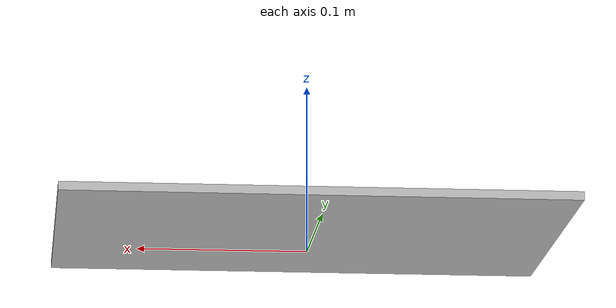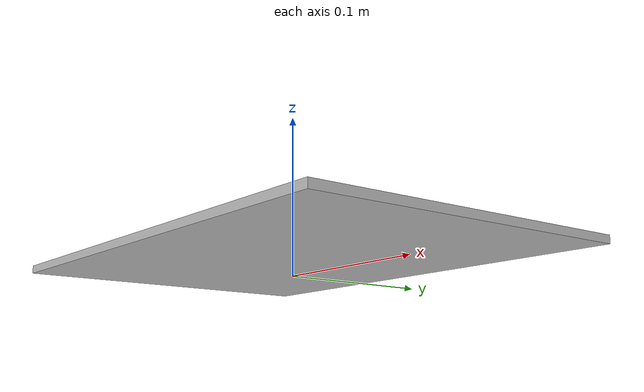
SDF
<?xml version="1.0" ?>
        <sdf version="1.5">
        <model name="calibration_pattern">
              <link name="Main">
                <pose>0 0 0 0 0 0</pose>
                    <visual name="calibration_pattern_Visual">
                        <pose>0 0 0.0125 0 0 0</pose>
                        <geometry>
                            <mesh>
                                <scale>1 1 1</scale>
                                <uri>calibration_pattern.obj</uri>
                            </mesh>
                        </geometry>
                    </visual>
                    <gravity>1</gravity>
                    <velocity_decay/>
                    <self_collide>0</self_collide>
              </link>
          </model></sdf>
